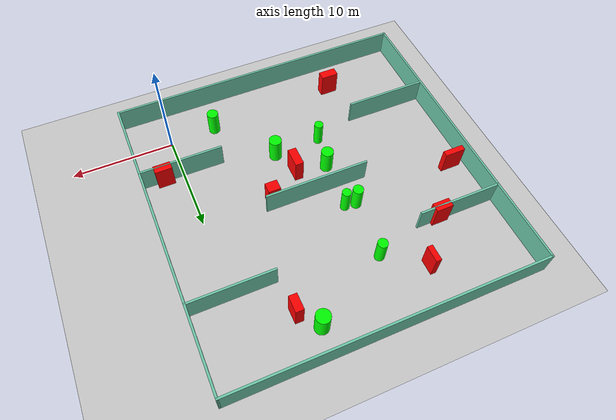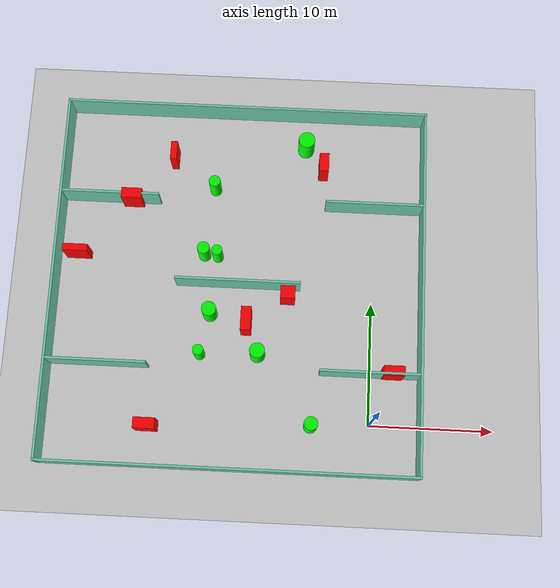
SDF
<sdf version="1.7">
 <world name="default">
  <light name="sun" type="directional">
   <pose>0 0 10 0 -0 0</pose>
   <diffuse>0.8 0.8 0.8 1</diffuse>
   <specular>0.2 0.2 0.2 1</specular>
   <attenuation>
    <range>1000</range>
    <constant>0.9</constant>
    <linear>0.01</linear>
    <quadratic>0.001</quadratic>
   </attenuation>
   <direction>-0.5 0.1 -0.9</direction>
   <spot><inner_angle>0</inner_angle><outer_angle>0</outer_angle><falloff>0</falloff></spot>
  </light>
  <model name="ground_plane">
   <static>1</static>
   <link name="link">
    <collision name="collision">
     <geometry><plane><normal>0 0 1</normal><size>100 100</size></plane></geometry>
     <surface>
      <contact><collide_bitmask>65535</collide_bitmask></contact>
      <friction><ode><mu>100</mu><mu2>50</mu2></ode></friction>
     </surface>
    </collision>
    <visual name="visual">
     <cast_shadows>0</cast_shadows>
     <geometry><plane><normal>0 0 1</normal><size>100 100</size></plane></geometry>
     <material>
      <script><uri>file://media/materials/scripts/gazebo.material</uri><name>Gazebo/Grey</name></script>
     </material>
    </visual>
   </link>
  </model>
  <gravity>0 0 -9.8</gravity>
  <magnetic_field>6e-06 2.3e-05 -4.2e-05</magnetic_field>
  <atmosphere type="adiabatic"/>
  <physics type="ode">
   <max_step_size>0.001</max_step_size>
   <real_time_factor>1</real_time_factor>
   <real_time_update_rate>1000</real_time_update_rate>
  </physics>
  <scene><ambient>0.4 0.4 0.4 1</ambient><background>0.7 0.7 0.7 1</background><shadows>1</shadows></scene>
  <spherical_coordinates>
   <surface_model>EARTH_WGS84</surface_model>
   <latitude_deg>0</latitude_deg>
   <longitude_deg>0</longitude_deg>
   <elevation>0</elevation>
   <heading_deg>0</heading_deg>
  </spherical_coordinates>
  <model name="my_base_walls">
   <link name="Wall_10">
    <collision name="Wall_10_Collision">
     <geometry><box><size>8.2 0.2 2.5</size></box></geometry>
     <pose>0 0 1.25 0 -0 0</pose>
    </collision>
    <visual name="Wall_10_Visual">
     <pose>0 0 1.25 0 -0 0</pose>
     <geometry><box><size>8.2 0.2 2.5</size></box></geometry>
     <material>
      <script><uri>file://media/materials/scripts/gazebo.material</uri><name>Gazebo/Grey</name></script>
      <ambient>0.435294 0.796078 0.67451 1</ambient>
     </material>
     <meta><layer>0</layer></meta>
    </visual>
    <pose>-11 -7 0 0 -0 0</pose>
   </link>
   <link name="Wall_12">
    <collision name="Wall_12_Collision">
     <geometry><box><size>8.2 0.2 2.5</size></box></geometry>
     <pose>0 0 1.25 0 -0 0</pose>
    </collision>
    <visual name="Wall_12_Visual">
     <pose>0 0 1.25 0 -0 0</pose>
     <geometry><box><size>8.2 0.2 2.5</size></box></geometry>
     <material>
      <script><uri>file://media/materials/scripts/gazebo.material</uri><name>Gazebo/Grey</name></script>
      <ambient>0.435294 0.796078 0.67451 1</ambient>
     </material>
     <meta><layer>0</layer></meta>
    </visual>
    <pose>-11 7 0 0 -0 0</pose>
   </link>
   <link name="Wall_14">
    <collision name="Wall_14_Collision">
     <geometry><box><size>8.2 0.2 2.5</size></box></geometry>
     <pose>0 0 1.25 0 -0 0</pose>
    </collision>
    <visual name="Wall_14_Visual">
     <pose>0 0 1.25 0 -0 0</pose>
     <geometry><box><size>8.2 0.2 2.5</size></box></geometry>
     <material>
      <script><uri>file://media/materials/scripts/gazebo.material</uri><name>Gazebo/Grey</name></script>
      <ambient>0.435294 0.796078 0.67451 1</ambient>
     </material>
     <meta><layer>0</layer></meta>
    </visual>
    <pose>11 7 0 0 -0 3.14159</pose>
   </link>
   <link name="Wall_16">
    <collision name="Wall_16_Collision">
     <geometry><box><size>10.2 0.2 2.5</size></box></geometry>
     <pose>0 0 1.25 0 -0 0</pose>
    </collision>
    <visual name="Wall_16_Visual">
     <pose>0 0 1.25 0 -0 0</pose>
     <geometry><box><size>10.2 0.2 2.5</size></box></geometry>
     <material>
      <script><uri>file://media/materials/scripts/gazebo.material</uri><name>Gazebo/Grey</name></script>
      <ambient>0.435294 0.796078 0.67451 1</ambient>
     </material>
     <meta><layer>0</layer></meta>
    </visual>
    <pose>0 0 0 0 -0 3.14159</pose>
   </link>
   <link name="Wall_2">
    <collision name="Wall_2_Collision">
     <geometry><box><size>30.2 0.2 2.5</size></box></geometry>
     <pose>0 0 1.25 0 -0 0</pose>
    </collision>
    <visual name="Wall_2_Visual">
     <pose>0 0 1.25 0 -0 0</pose>
     <geometry><box><size>30.2 0.2 2.5</size></box></geometry>
     <material>
      <script><uri>file://media/materials/scripts/gazebo.material</uri><name>Gazebo/Grey</name></script>
      <ambient>0.435294 0.796078 0.67451 1</ambient>
     </material>
     <meta><layer>0</layer></meta>
    </visual>
    <pose>0 -15 0 0 -0 3.14159</pose>
   </link>
   <link name="Wall_3">
    <collision name="Wall_3_Collision">
     <geometry><box><size>30.2 0.2 2.5</size></box></geometry>
     <pose>0 0 1.25 0 -0 0</pose>
    </collision>
    <visual name="Wall_3_Visual">
     <pose>0 0 1.25 0 -0 0</pose>
     <geometry><box><size>30.2 0.2 2.5</size></box></geometry>
     <material>
      <script><uri>file://media/materials/scripts/gazebo.material</uri><name>Gazebo/Grey</name></script>
      <ambient>0.435294 0.796078 0.67451 1</ambient>
     </material>
     <meta><layer>0</layer></meta>
    </visual>
    <pose>-15 0 0 0 -0 1.5708</pose>
   </link>
   <link name="Wall_4">
    <collision name="Wall_4_Collision">
     <geometry><box><size>30.2 0.2 2.5</size></box></geometry>
     <pose>0 0 1.25 0 -0 0</pose>
    </collision>
    <visual name="Wall_4_Visual">
     <pose>0 0 1.25 0 -0 0</pose>
     <geometry><box><size>30.2 0.2 2.5</size></box></geometry>
     <material>
      <script><uri>file://media/materials/scripts/gazebo.material</uri><name>Gazebo/Grey</name></script>
      <ambient>0.435294 0.796078 0.67451 1</ambient>
     </material>
     <meta><layer>0</layer></meta>
    </visual>
    <pose>0 15 0 0 -0 0</pose>
   </link>
   <link name="Wall_6">
    <collision name="Wall_6_Collision">
     <geometry><box><size>30.2 0.2 2.5</size></box></geometry>
     <pose>0 0 1.25 0 -0 0</pose>
    </collision>
    <visual name="Wall_6_Visual">
     <pose>0 0 1.25 0 -0 0</pose>
     <geometry><box><size>30.2 0.2 2.5</size></box></geometry>
     <material>
      <script><uri>file://media/materials/scripts/gazebo.material</uri><name>Gazebo/Grey</name></script>
      <ambient>0.435294 0.796078 0.67451 1</ambient>
     </material>
     <meta><layer>0</layer></meta>
    </visual>
    <pose>15 0 0 0 -0 1.5708</pose>
   </link>
   <link name="Wall_8">
    <collision name="Wall_8_Collision">
     <geometry><box><size>8.2 0.2 2.5</size></box></geometry>
     <pose>0 0 1.25 0 -0 0</pose>
    </collision>
    <visual name="Wall_8_Visual">
     <pose>0 0 1.25 0 -0 0</pose>
     <geometry><box><size>8.2 0.2 2.5</size></box></geometry>
     <material>
      <script><uri>file://media/materials/scripts/gazebo.material</uri><name>Gazebo/Grey</name></script>
      <ambient>0.435294 0.796078 0.67451 1</ambient>
     </material>
     <meta><layer>0</layer></meta>
    </visual>
    <pose>11 -7 0 0 -0 3.14159</pose>
   </link>
   <static>1</static>
   <pose>-11 11 0 0 -0 0</pose>
  </model>
  <model name="cylinder1">
   <static>1</static>
   <link name="link">
    <inertial>
     <mass>1</mass>
     <inertia><ixx>0.5</ixx><ixy>0</ixy><ixz>0</ixz><iyy>0.5</iyy><iyz>0</iyz><izz>1</izz></inertia>
    </inertial>
    <collision name="collision">
     <geometry><cylinder><radius>0.5940488714639948</radius><length>2.5</length></cylinder></geometry>
    </collision>
    <visual name="visual">
     <geometry><cylinder><radius>0.5940488714639948</radius><length>2.5</length></cylinder></geometry>
     <material>
      <ambient>0 1 0 1</ambient>
      <diffuse>0 1 0 1</diffuse>
      <specular>0.1 0.1 0.1 1</specular>
      <emissive>0 0 0 0</emissive>
     </material>
    </visual>
   </link>
   <pose>-13.176730171301335 8.534451561617809 1.25 0 0 0</pose>
  </model>
  <model name="cylinder2">
   <static>1</static>
   <link name="link">
    <inertial>
     <mass>1</mass>
     <inertia><ixx>0.5</ixx><ixy>0</ixy><ixz>0</ixz><iyy>0.5</iyy><iyz>0</iyz><izz>1</izz></inertia>
    </inertial>
    <collision name="collision">
     <geometry><cylinder><radius>0.4335321571951176</radius><length>2.5</length></cylinder></geometry>
    </collision>
    <visual name="visual">
     <geometry><cylinder><radius>0.4335321571951176</radius><length>2.5</length></cylinder></geometry>
     <material>
      <ambient>0 1 0 1</ambient>
      <diffuse>0 1 0 1</diffuse>
      <specular>0.1 0.1 0.1 1</specular>
      <emissive>0 0 0 0</emissive>
     </material>
    </visual>
   </link>
   <pose>-13.824771859256929 5.168252789087536 1.25 0 0 0</pose>
  </model>
  <model name="cylinder3">
   <static>1</static>
   <link name="link">
    <inertial>
     <mass>1</mass>
     <inertia><ixx>0.5</ixx><ixy>0</ixy><ixz>0</ixz><iyy>0.5</iyy><iyz>0</iyz><izz>1</izz></inertia>
    </inertial>
    <collision name="collision">
     <geometry><cylinder><radius>0.4788915345001333</radius><length>2.5</length></cylinder></geometry>
    </collision>
    <visual name="visual">
     <geometry><cylinder><radius>0.4788915345001333</radius><length>2.5</length></cylinder></geometry>
     <material>
      <ambient>0 1 0 1</ambient>
      <diffuse>0 1 0 1</diffuse>
      <specular>0.1 0.1 0.1 1</specular>
      <emissive>0 0 0 0</emissive>
     </material>
    </visual>
   </link>
   <pose>-13.35544166663279 19.32521189249058 1.25 0 0 0</pose>
  </model>
  <model name="cylinder4">
   <static>1</static>
   <link name="link">
    <inertial>
     <mass>1</mass>
     <inertia><ixx>0.5</ixx><ixy>0</ixy><ixz>0</ixz><iyy>0.5</iyy><iyz>0</iyz><izz>1</izz></inertia>
    </inertial>
    <collision name="collision">
     <geometry><cylinder><radius>0.43227917421836465</radius><length>2.5</length></cylinder></geometry>
    </collision>
    <visual name="visual">
     <geometry><cylinder><radius>0.43227917421836465</radius><length>2.5</length></cylinder></geometry>
     <material>
      <ambient>0 1 0 1</ambient>
      <diffuse>0 1 0 1</diffuse>
      <specular>0.1 0.1 0.1 1</specular>
      <emissive>0 0 0 0</emissive>
     </material>
    </visual>
   </link>
   <pose>-12.819056375041152 13.432803685862734 1.25 0 0 0</pose>
  </model>
  <model name="cylinder5">
   <static>1</static>
   <link name="link">
    <inertial>
     <mass>1</mass>
     <inertia><ixx>0.5</ixx><ixy>0</ixy><ixz>0</ixz><iyy>0.5</iyy><iyz>0</iyz><izz>1</izz></inertia>
    </inertial>
    <collision name="collision">
     <geometry><cylinder><radius>0.5059562649177594</radius><length>2.5</length></cylinder></geometry>
    </collision>
    <visual name="visual">
     <geometry><cylinder><radius>0.5059562649177594</radius><length>2.5</length></cylinder></geometry>
     <material>
      <ambient>0 1 0 1</ambient>
      <diffuse>0 1 0 1</diffuse>
      <specular>0.1 0.1 0.1 1</specular>
      <emissive>0 0 0 0</emissive>
     </material>
    </visual>
   </link>
   <pose>-13.927670751332315 13.559755006128764 1.25 0 0 0</pose>
  </model>
  <model name="cylinder6">
   <static>1</static>
   <link name="link">
    <inertial>
     <mass>1</mass>
     <inertia><ixx>0.5</ixx><ixy>0</ixy><ixz>0</ixz><iyy>0.5</iyy><iyz>0</iyz><izz>1</izz></inertia>
    </inertial>
    <collision name="collision">
     <geometry><cylinder><radius>0.6153348602508865</radius><length>2.5</length></cylinder></geometry>
    </collision>
    <visual name="visual">
     <geometry><cylinder><radius>0.6153348602508865</radius><length>2.5</length></cylinder></geometry>
     <material>
      <ambient>0 1 0 1</ambient>
      <diffuse>0 1 0 1</diffuse>
      <specular>0.1 0.1 0.1 1</specular>
      <emissive>0 0 0 0</emissive>
     </material>
    </visual>
   </link>
   <pose>-9.121471001403098 5.3312095203962535 1.25 0 0 0</pose>
  </model>
  <model name="cylinder7">
   <static>1</static>
   <link name="link">
    <inertial>
     <mass>1</mass>
     <inertia><ixx>0.5</ixx><ixy>0</ixy><ixz>0</ixz><iyy>0.5</iyy><iyz>0</iyz><izz>1</izz></inertia>
    </inertial>
    <collision name="collision">
     <geometry><cylinder><radius>0.5518272065181005</radius><length>2.5</length></cylinder></geometry>
    </collision>
    <visual name="visual">
     <geometry><cylinder><radius>0.5518272065181005</radius><length>2.5</length></cylinder></geometry>
     <material>
      <ambient>0 1 0 1</ambient>
      <diffuse>0 1 0 1</diffuse>
      <specular>0.1 0.1 0.1 1</specular>
      <emissive>0 0 0 0</emissive>
     </material>
    </visual>
   </link>
   <pose>-4.623799135535275 -0.23487221727458607 1.25 0 0 0</pose>
  </model>
  <model name="cylinder8">
   <static>1</static>
   <link name="link">
    <inertial>
     <mass>1</mass>
     <inertia><ixx>0.5</ixx><ixy>0</ixy><ixz>0</ixz><iyy>0.5</iyy><iyz>0</iyz><izz>1</izz></inertia>
    </inertial>
    <collision name="collision">
     <geometry><cylinder><radius>0.6757536565372748</radius><length>2.5</length></cylinder></geometry>
    </collision>
    <visual name="visual">
     <geometry><cylinder><radius>0.6757536565372748</radius><length>2.5</length></cylinder></geometry>
     <material>
      <ambient>0 1 0 1</ambient>
      <diffuse>0 1 0 1</diffuse>
      <specular>0.1 0.1 0.1 1</specular>
      <emissive>0 0 0 0</emissive>
     </material>
    </visual>
   </link>
   <pose>-5.878452342742975 23.288744722716928 1.25 0 0 0</pose>
  </model>
  <model name="box1">
   <static>1</static>
   <link name="link">
    <inertial>
     <mass>1</mass>
     <inertia><ixx>0.083</ixx><ixy>0</ixy><ixz>0</ixz><iyy>0.083</iyy><iyz>0</iyz><izz>0.083</izz></inertia>
    </inertial>
    <collision name="collision">
     <geometry><box><size>1.6614741225928427 0.7999571921962499 2.5</size></box></geometry>
    </collision>
    <visual name="visual">
     <geometry><box><size>1.6614741225928427 0.7999571921962499 2.5</size></box></geometry>
     <material>
      <ambient>1 0 0 1</ambient>
      <diffuse>1 0 0 1</diffuse>
      <specular>0.1 0.1 0.1 1</specular>
      <emissive>0 0 0 0</emissive>
     </material>
    </visual>
    <sensor name="my_contact" type="contact">
     <contact><collision>box_collision</collision><topic>__default_topic__</topic></contact>
    </sensor>
   </link>
   <pose>1.8197077613084573 4.216273097884016 1.25 0 0 0</pose>
  </model>
  <model name="box2">
   <static>1</static>
   <link name="link">
    <inertial>
     <mass>1</mass>
     <inertia><ixx>0.083</ixx><ixy>0</ixy><ixz>0</ixz><iyy>0.083</iyy><iyz>0</iyz><izz>0.083</izz></inertia>
    </inertial>
    <collision name="collision">
     <geometry><box><size>0.8285532601972175 1.9152692020399613 2.5</size></box></geometry>
    </collision>
    <visual name="visual">
     <geometry><box><size>0.8285532601972175 1.9152692020399613 2.5</size></box></geometry>
     <material>
      <ambient>1 0 0 1</ambient>
      <diffuse>1 0 0 1</diffuse>
      <specular>0.1 0.1 0.1 1</specular>
      <emissive>0 0 0 0</emissive>
     </material>
    </visual>
    <sensor name="my_contact" type="contact">
     <contact><collision>box_collision</collision><topic>__default_topic__</topic></contact>
    </sensor>
   </link>
   <pose>-10.158337334931481 7.9002231171829145 1.25 0 0 0</pose>
  </model>
  <model name="box3">
   <static>1</static>
   <link name="link">
    <inertial>
     <mass>1</mass>
     <inertia><ixx>0.083</ixx><ixy>0</ixy><ixz>0</ixz><iyy>0.083</iyy><iyz>0</iyz><izz>0.083</izz></inertia>
    </inertial>
    <collision name="collision">
     <geometry><box><size>2.0343055265140233 0.550840188801863 2.5</size></box></geometry>
    </collision>
    <visual name="visual">
     <geometry><box><size>2.0343055265140233 0.550840188801863 2.5</size></box></geometry>
     <material>
      <ambient>1 0 0 1</ambient>
      <diffuse>1 0 0 1</diffuse>
      <specular>0.1 0.1 0.1 1</specular>
      <emissive>0 0 0 0</emissive>
     </material>
    </visual>
    <sensor name="my_contact" type="contact">
     <contact><collision>box_collision</collision><topic>__default_topic__</topic></contact>
    </sensor>
   </link>
   <pose>-24.361945808596328 13.135518265727505 1.25 0 0 0</pose>
  </model>
  <model name="box4">
   <static>1</static>
   <link name="link">
    <inertial>
     <mass>1</mass>
     <inertia><ixx>0.083</ixx><ixy>0</ixy><ixz>0</ixz><iyy>0.083</iyy><iyz>0</iyz><izz>0.083</izz></inertia>
    </inertial>
    <collision name="collision">
     <geometry><box><size>0.7820076116415766 1.5507331004153557 2.5</size></box></geometry>
    </collision>
    <visual name="visual">
     <geometry><box><size>0.7820076116415766 1.5507331004153557 2.5</size></box></geometry>
     <material>
      <ambient>1 0 0 1</ambient>
      <diffuse>1 0 0 1</diffuse>
      <specular>0.1 0.1 0.1 1</specular>
      <emissive>0 0 0 0</emissive>
     </material>
    </visual>
    <sensor name="my_contact" type="contact">
     <contact><collision>box_collision</collision><topic>__default_topic__</topic></contact>
    </sensor>
   </link>
   <pose>-4.354389549255027 21.406628772733097 1.25 0 0 0</pose>
  </model>
  <model name="box5">
   <static>1</static>
   <link name="link">
    <inertial>
     <mass>1</mass>
     <inertia><ixx>0.083</ixx><ixy>0</ixy><ixz>0</ixz><iyy>0.083</iyy><iyz>0</iyz><izz>0.083</izz></inertia>
    </inertial>
    <collision name="collision">
     <geometry><box><size>0.5339411295500461 1.5331686809027278 2.5</size></box></geometry>
    </collision>
    <visual name="visual">
     <geometry><box><size>0.5339411295500461 1.5331686809027278 2.5</size></box></geometry>
     <material>
      <ambient>1 0 0 1</ambient>
      <diffuse>1 0 0 1</diffuse>
      <specular>0.1 0.1 0.1 1</specular>
      <emissive>0 0 0 0</emissive>
     </material>
    </visual>
    <sensor name="my_contact" type="contact">
     <contact><collision>box_collision</collision><topic>__default_topic__</topic></contact>
    </sensor>
   </link>
   <pose>-16.911735368474766 21.883500971289866 1.25 0 0 0</pose>
  </model>
  <model name="box6">
   <static>1</static>
   <link name="link">
    <inertial>
     <mass>1</mass>
     <inertia><ixx>0.083</ixx><ixy>0</ixy><ixz>0</ixz><iyy>0.083</iyy><iyz>0</iyz><izz>0.083</izz></inertia>
    </inertial>
    <collision name="collision">
     <geometry><box><size>1.6567724143860325 0.8448429726853259 2.5</size></box></geometry>
    </collision>
    <visual name="visual">
     <geometry><box><size>1.6567724143860325 0.8448429726853259 2.5</size></box></geometry>
     <material>
      <ambient>1 0 0 1</ambient>
      <diffuse>1 0 0 1</diffuse>
      <specular>0.1 0.1 0.1 1</specular>
      <emissive>0 0 0 0</emissive>
     </material>
    </visual>
    <sensor name="my_contact" type="contact">
     <contact><collision>box_collision</collision><topic>__default_topic__</topic></contact>
    </sensor>
   </link>
   <pose>-20.153210432548807 17.98480027865434 1.25 0 0 0</pose>
  </model>
  <model name="box7">
   <static>1</static>
   <link name="link">
    <inertial>
     <mass>1</mass>
     <inertia><ixx>0.083</ixx><ixy>0</ixy><ixz>0</ixz><iyy>0.083</iyy><iyz>0</iyz><izz>0.083</izz></inertia>
    </inertial>
    <collision name="collision">
     <geometry><box><size>1.710876942363888 0.861557331656581 2.5</size></box></geometry>
    </collision>
    <visual name="visual">
     <geometry><box><size>1.710876942363888 0.861557331656581 2.5</size></box></geometry>
     <material>
      <ambient>1 0 0 1</ambient>
      <diffuse>1 0 0 1</diffuse>
      <specular>0.1 0.1 0.1 1</specular>
      <emissive>0 0 0 0</emissive>
     </material>
    </visual>
    <sensor name="my_contact" type="contact">
     <contact><collision>box_collision</collision><topic>__default_topic__</topic></contact>
    </sensor>
   </link>
   <pose>-17.661888570742157 -0.7881919817478757 1.25 0 0 0</pose>
  </model>
  <model name="box8">
   <static>1</static>
   <link name="link">
    <inertial>
     <mass>1</mass>
     <inertia><ixx>0.083</ixx><ixy>0</ixy><ixz>0</ixz><iyy>0.083</iyy><iyz>0</iyz><izz>0.083</izz></inertia>
    </inertial>
    <collision name="collision">
     <geometry><box><size>1.195835620197892 1.0362438615500698 2.5</size></box></geometry>
    </collision>
    <visual name="visual">
     <geometry><box><size>1.195835620197892 1.0362438615500698 2.5</size></box></geometry>
     <material>
      <ambient>1 0 0 1</ambient>
      <diffuse>1 0 0 1</diffuse>
      <specular>0.1 0.1 0.1 1</specular>
      <emissive>0 0 0 0</emissive>
     </material>
    </visual>
    <sensor name="my_contact" type="contact">
     <contact><collision>box_collision</collision><topic>__default_topic__</topic></contact>
    </sensor>
   </link>
   <pose>-6.8822495276656 10.190869875362448 1.25 0 0 0</pose>
  </model>
 </world>
</sdf>
